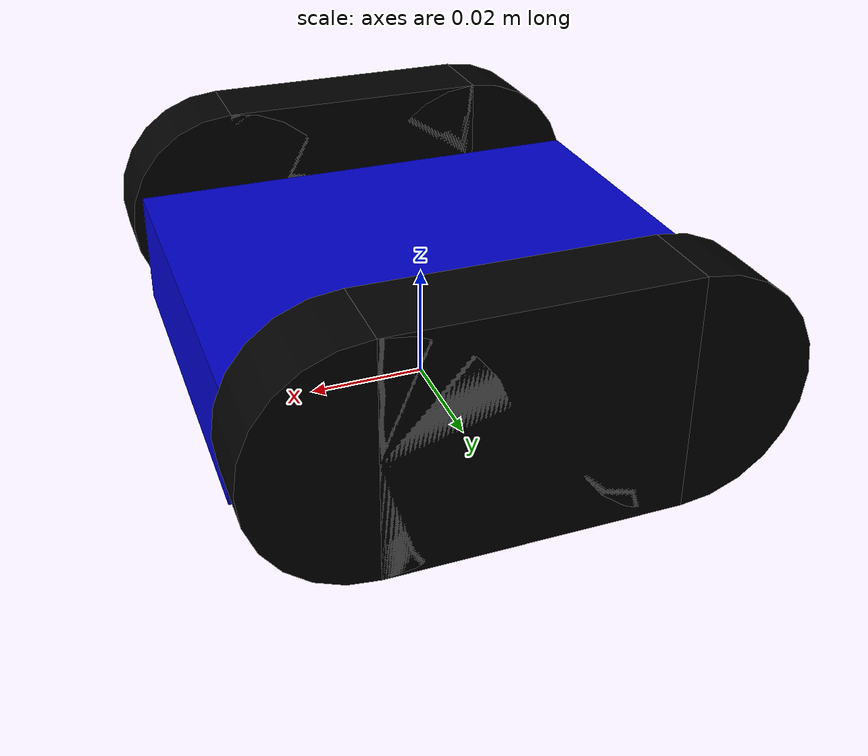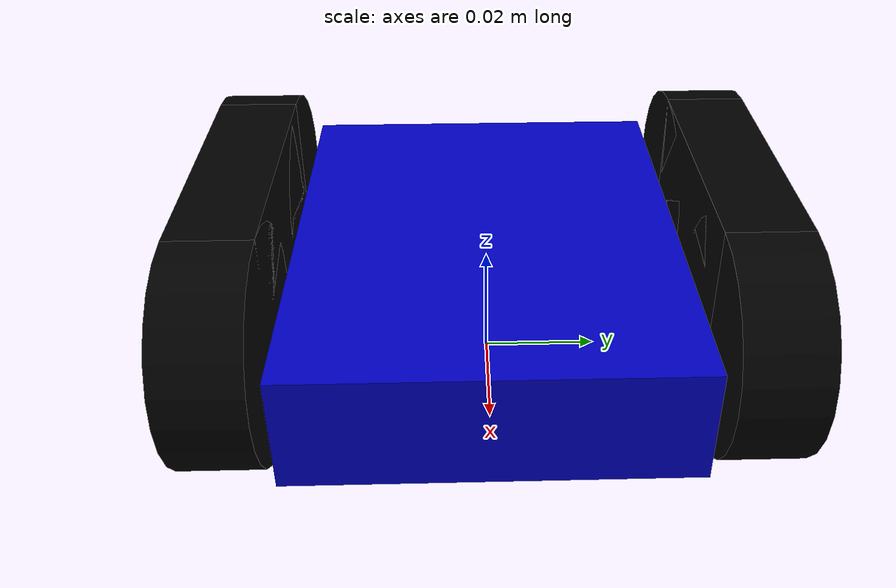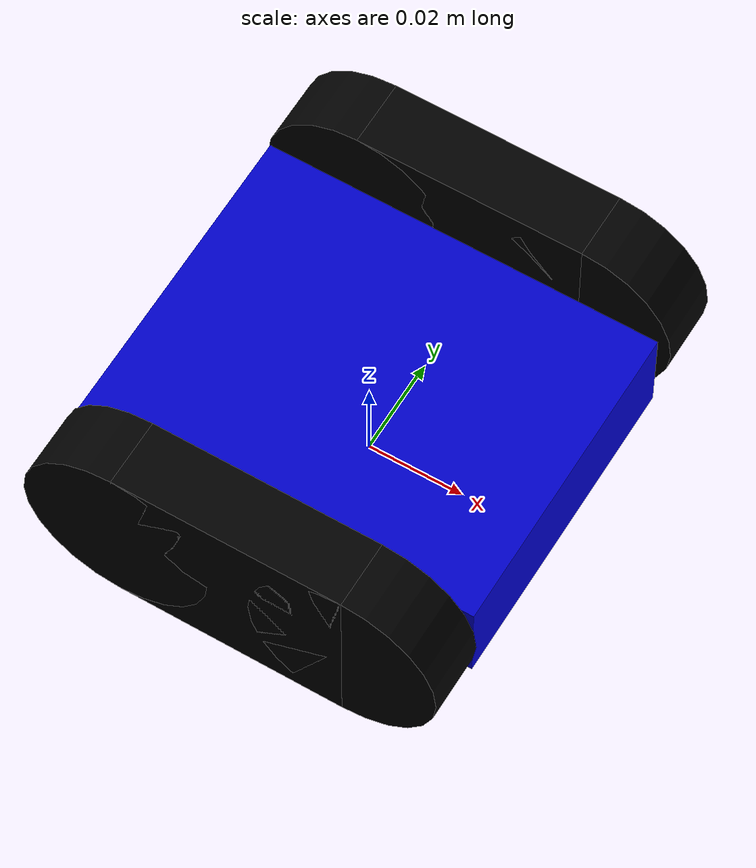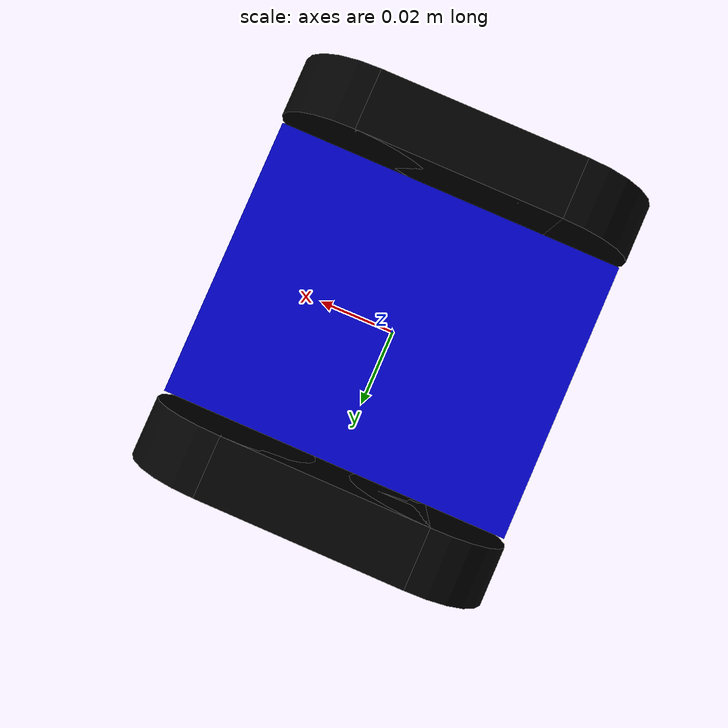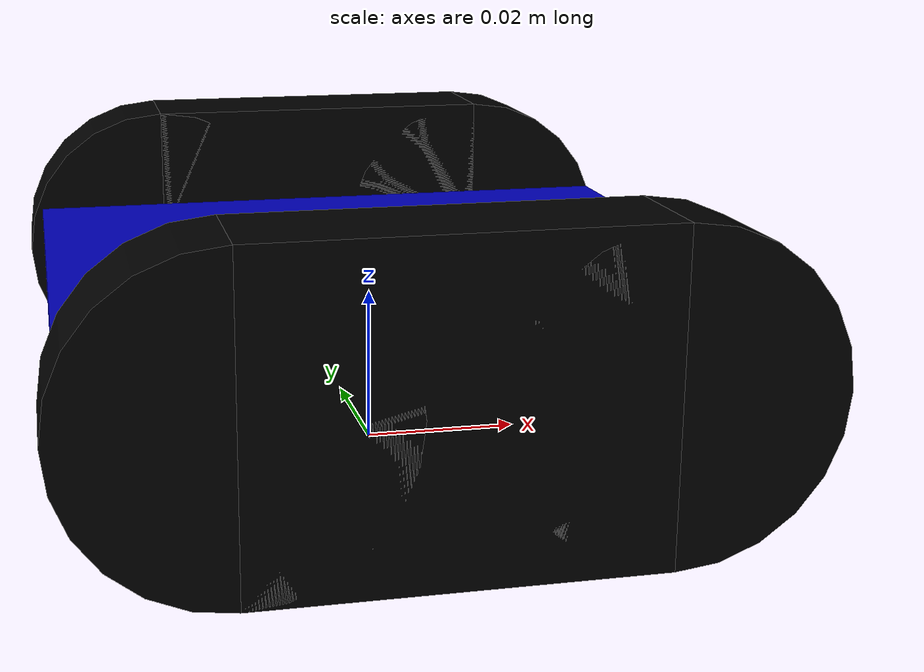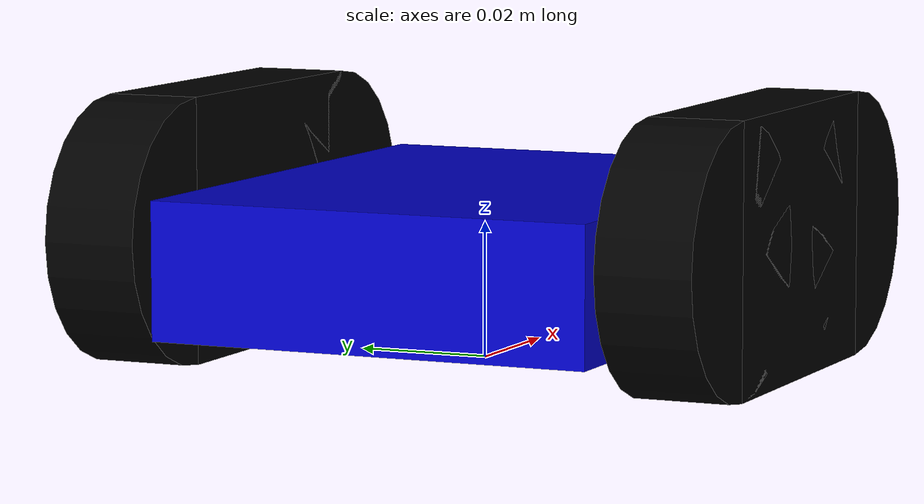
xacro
<?xml version="1.0"?>
<robot xmlns:xacro="http://www.ros.org/wiki/xacro" name="zumo">

	<!-- materials for visualization -->
  <xacro:include filename="$(find zumo_description)/urdf/materials.urdf.xacro" />

	<!-- ##### Properties #####-->

	<!-- General properties -->
	<xacro:property name="M_PI" value="3.1415926535897931" />

	<!-- Base properties -->
	<!-- https://www.pololu.com/file/download/zumo-32u4-main-board-dimension-diagram.pdf?file_id=0J947 -->
	<xacro:property name="chassis_length" value="0.0828" />
	<xacro:property name="chassis_width" value="0.066" />
	<xacro:property name="chassis_height" value="0.02" />
	<xacro:property name="base_mass" value="0.1" /> <!-- [kg] some arbitrary value -->

	<!-- Wheel properties -->
	<xacro:property name="wheel_radius" value="0.0195" /> <!-- https://www.pololu.com/docs/0J63/all#3.13 -->
	<xacro:property name="wheel_thickness" value="0.014" /> <!-- measured [TODO: check this value] -->
	<xacro:property name="wheel_mass" value="0.01" /> <!-- [kg] some arbitrary valu -->

  <xacro:property name="base_x_origin_to_wheel_origin" value="0.02375" /> <!-- measured [TODO: check this value]; using datasheet values (86 - 39)/2 = 0.0235 -->
  <xacro:property name="base_y_origin_to_wheel_origin" value="0.042" /> <!-- https://www.pololu.com/docs/0J63/all#3.13 & measured value -->
  <xacro:property name="base_z_origin_to_wheel_origin" value="0.0035" /> <!-- measured [TODO: check this value] -->

	<!-- Crawler boxe properties -->
	<xacro:property name="crawler_box_mass" value="0.01" /> <!-- [kg] some arbitrary value -->

	<!-- ##### macros ##### -->

	<!-- default macros -->
	<xacro:macro name="default_inertial" params="mass *origin">
		<inertial>
			<xacro:insert_block name="origin"/>
			<mass value="${mass}" />
				<inertia ixx="0.01" ixy="0.0" ixz="0.0"
				       iyy="0.01" iyz="0.0"
				       izz="0.01" />
			</inertial>
	</xacro:macro>

	<!-- wheel macro -->
  <xacro:macro name="wheel" params="fb lr parent translateX translateY"> <!--fb : front, back ; lr: left, right -->
    <link name="${fb}_${lr}_wheel">
      <visual>
        <origin xyz="0 0 0" rpy="${M_PI/2} 0 0" />
        <geometry>
          <cylinder length="${wheel_thickness}" radius="${wheel_radius}" />
        </geometry>
        <material name="Black" />
      </visual>
      <collision>
        <origin xyz="0 0 0" rpy="${M_PI/2} 0 0" />
        <geometry>
          <cylinder length="${wheel_thickness}" radius="${wheel_radius}" />
        </geometry>
      </collision>
			<xacro:default_inertial mass="${wheel_mass}">
					<origin xyz="0 0 0" rpy="0 0 0"/>		<!-- TODO: change this according to the real center of gravity if necessary -->
			</xacro:default_inertial>
    </link>

    <joint name="${fb}_${lr}_wheel_joint" type="continuous">
      <parent link="${parent}"/>
      <child link="${fb}_${lr}_wheel"/>
      <origin xyz="${translateX * base_x_origin_to_wheel_origin} ${translateY * base_y_origin_to_wheel_origin} ${base_z_origin_to_wheel_origin}" rpy="0 0 0" />
      <axis xyz="0 1 0" rpy="0 0 0" />
      <limit effort="100" velocity="100"/>
      <joint_properties damping="0.0" friction="0.0"/>
    </joint>

  </xacro:macro>

	<!-- crawler box macro -->
	<xacro:macro name="crawler_box" params="side parent translateY">
		<link name="${side}_crawler_link">
			<xacro:default_inertial mass="${crawler_box_mass}">
					<origin xyz="0 0 0" rpy="0 0 0"/>		<!-- TODO: change this according to the real center of gravity if necessary -->
			</xacro:default_inertial>
			<visual>
				<origin xyz="0 0 0" rpy="0 0 0" />
				<geometry>
						<box size="${2 * base_x_origin_to_wheel_origin} ${wheel_thickness} ${2 * wheel_radius}"/>
				</geometry>
				<material name="Black" />
			</visual>
			<collision>
				<origin xyz="0 0 0" rpy="0 0 0" />
				<geometry>
						<box size="${2 * base_x_origin_to_wheel_origin} ${wheel_thickness} ${2 * wheel_radius}"/>
				</geometry>
			</collision>
		</link>

		  <joint name="${side}_crawler_joint" type="fixed">
		    <parent link="${parent}"/>
		    <child link="${side}_crawler_link"/>
		    <origin xyz="0 ${translateY * base_y_origin_to_wheel_origin} ${base_z_origin_to_wheel_origin}" rpy="0 0 0" />
		    <axis xyz="1 0 0" rpy="0 0 0" />
		  </joint>

	</xacro:macro>

	<!-- base macro -->
	<xacro:macro name="zumo_base" params="name">

		<!-- base footprint -->
		<!-- base_footprint is a fictitious link(frame) that is on the ground right below base_link origin -->
		<link name="base_footprint">
			<visual>
				<origin xyz="0 0 0" rpy="0 0 0" />
				<geometry>
					<box size="0.001 0.001 0.001" />
				</geometry>
			</visual>
		</link>

		<!-- base link -->
		<link name="${name}_link">
			<xacro:default_inertial mass="${base_mass}">
					<origin xyz="0 0 0" rpy="0 0 0"/>		<!-- TODO: change this according to the real center of gravity if necessary -->
			</xacro:default_inertial>
			<visual>
				<origin xyz="0 0 0" rpy="0 0 0" />
				<geometry>
			  		<box size="${chassis_length} ${chassis_width} ${chassis_height}"/>
				</geometry>
				<material name="Blue" />
			</visual>
			<collision>
				<origin xyz="0 0 0" rpy="0 0 0" />
				<geometry>
			  		<box size="${chassis_length} ${chassis_width} ${chassis_height}"/>
				</geometry>
			</collision>
		</link>

		<joint name="base_footprint_joint" type="fixed">
			<origin xyz="0 0 ${wheel_radius - base_z_origin_to_wheel_origin}" rpy="0 0 0" />
		  <parent link="base_footprint"/>
		  <child link="base_link" />
		</joint>

		<!-- crawler boxes -->
		<xacro:crawler_box side="left" parent="base_link" translateY="1" />
		<xacro:crawler_box side="right" parent="base_link" translateY="-1" />

		<!-- wheels -->
		<xacro:wheel fb="front" lr="right" parent="base_link" translateX="1" translateY="-1" />
		<xacro:wheel fb="front" lr="left" parent="base_link" translateX="1" translateY="1" />
		<xacro:wheel fb="back" lr="right" parent="base_link" translateX="-1" translateY="-1" />
		<xacro:wheel fb="back" lr="left" parent="base_link" translateX="-1" translateY="1" />

	</xacro:macro>

	<xacro:zumo_base name="base"/>

</robot>

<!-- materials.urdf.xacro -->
<robot>

  <material name="Black">
      <color rgba="0.0 0.0 0.0 1.0"/>
  </material>

  <material name="Blue">
      <color rgba="0.0 0.0 0.8 1.0"/>
  </material>

  <material name="Green">
      <color rgba="0.0 0.8 0.0 1.0"/>
  </material>

  <material name="Grey">
      <color rgba="0.7 0.7 0.7 1.0"/>
  </material>

  <material name="Grey2">
      <color rgba="0.9 0.9 0.9 1.0"/>
  </material>

  <material name="Red">
      <color rgba="0.8 0.0 0.0 1.0"/>
  </material>

  <material name="White">
      <color rgba="1.0 1.0 1.0 1.0"/>
  </material>

  <material name="LightGrey">
    <color rgba="0.6 0.6 0.6 1.0"/>
  </material>

</robot>
